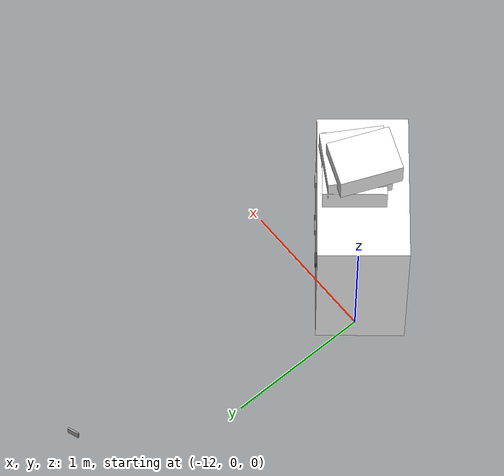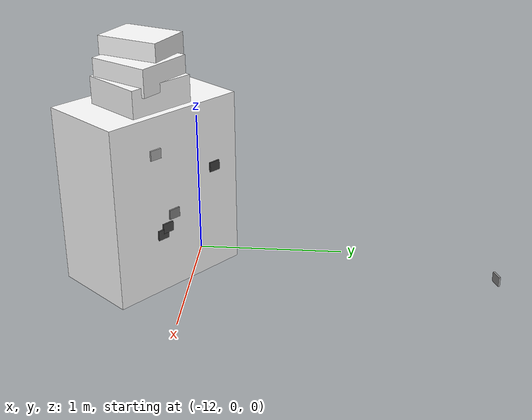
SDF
<sdf version="1.9">
 <world name="warehouse_irregular">
  <model name="panel_18_6_1">
   <static>true</static>
   <pose>-11.474506698169376 2.0002537901615995 0.13221671595427414 0 0 0.3568448051382027</pose>
   <link name="body">
    <visual name="surface">
     <geometry><box><size>0.08 0.012 0.065</size></box></geometry>
     <material>
      <ambient>0.6181526915644285 0.6181526915644285 0.6181526915644285 1</ambient>
      <diffuse>0.6181526915644285 0.6181526915644285 0.6181526915644285 1</diffuse>
     </material>
    </visual>
   </link>
  </model>
  <model name="cabinet_20">
   <static>true</static>
   <pose>-11.712233484824505 -0.2793267875629988 0.6052531006118012 0 0 -0.6949268432299933</pose>
   <link name="body">
    <visual name="surface">
     <geometry><box><size>1 0.6 1.2105062012236023</size></box></geometry>
     <material>
      <ambient>1 1 1 1</ambient>
      <diffuse>1 1 1 1</diffuse>
      <pbr>
       <metal>
        <albedo_map>model://feature_warehouse_materials/textures/storage_20.png</albedo_map>
        <roughness>.9</roughness>
        <metalness>0</metalness>
       </metal>
      </pbr>
     </material>
    </visual>
    <collision name="solid"><geometry><box><size>1 0.6 1.2105062012236023</size></box></geometry></collision>
   </link>
  </model>
  <model name="panel_20_0_1">
   <static>true</static>
   <pose>-11.750878609053675 0.14997326193969202 0.7467822247445873 0 0 -0.6949268432299933</pose>
   <link name="body">
    <visual name="surface">
     <geometry><box><size>0.08 0.012 0.065</size></box></geometry>
     <material>
      <ambient>0.250268938760258 0.250268938760258 0.250268938760258 1</ambient>
      <diffuse>0.250268938760258 0.250268938760258 0.250268938760258 1</diffuse>
     </material>
    </visual>
   </link>
  </model>
  <model name="panel_20_1_1">
   <static>true</static>
   <pose>-11.404296625320264 -0.1389558138581402 0.4090383457211423 0 0 -0.6949268432299933</pose>
   <link name="body">
    <visual name="surface">
     <geometry><box><size>0.08 0.012 0.065</size></box></geometry>
     <material>
      <ambient>0.2869058954303475 0.2869058954303475 0.2869058954303475 1</ambient>
      <diffuse>0.2869058954303475 0.2869058954303475 0.2869058954303475 1</diffuse>
     </material>
    </visual>
   </link>
  </model>
  <model name="panel_20_2_1">
   <static>true</static>
   <pose>-11.479254562367853 -0.07646691226673324 0.5254771433696706 0 0 -0.6949268432299933</pose>
   <link name="body">
    <visual name="surface">
     <geometry><box><size>0.08 0.012 0.065</size></box></geometry>
     <material>
      <ambient>0.5151647902656761 0.5151647902656761 0.5151647902656761 1</ambient>
      <diffuse>0.5151647902656761 0.5151647902656761 0.5151647902656761 1</diffuse>
     </material>
    </visual>
   </link>
  </model>
  <model name="panel_20_3_1">
   <static>true</static>
   <pose>-11.435144880068815 -0.11323907682967793 0.4448447473720447 0 0 -0.6949268432299933</pose>
   <link name="body">
    <visual name="surface">
     <geometry><box><size>0.08 0.012 0.065</size></box></geometry>
     <material>
      <ambient>0.28742045367606633 0.28742045367606633 0.28742045367606633 1</ambient>
      <diffuse>0.28742045367606633 0.28742045367606633 0.28742045367606633 1</diffuse>
     </material>
    </visual>
   </link>
  </model>
  <model name="panel_20_4_1">
   <static>true</static>
   <pose>-11.383359231984455 -0.15641033252920858 0.970644005284138 0 0 -0.6949268432299933</pose>
   <link name="body">
    <visual name="surface">
     <geometry><box><size>0.08 0.012 0.065</size></box></geometry>
     <material>
      <ambient>0.6899611390773993 0.6899611390773993 0.6899611390773993 1</ambient>
      <diffuse>0.6899611390773993 0.6899611390773993 0.6899611390773993 1</diffuse>
     </material>
    </visual>
   </link>
  </model>
  <model name="carton_20_0">
   <static>true</static>
   <pose>-11.620938959751742 -0.2793267875629988 1.3105062012236024 0 0 -0.6949268432299933</pose>
   <link name="body">
    <visual name="surface">
     <geometry><box><size>0.45 0.42 0.18</size></box></geometry>
     <material>
      <ambient>1 1 1 1</ambient>
      <diffuse>1 1 1 1</diffuse>
      <pbr>
       <metal>
        <albedo_map>model://feature_warehouse_materials/textures/storage_20.png</albedo_map>
        <roughness>.9</roughness>
        <metalness>0</metalness>
       </metal>
      </pbr>
     </material>
    </visual>
    <collision name="solid"><geometry><box><size>0.45 0.42 0.18</size></box></geometry></collision>
   </link>
  </model>
  <model name="carton_20_1">
   <static>true</static>
   <pose>-11.6285679209709 -0.2793267875629988 1.4305062012236025 0 0 -0.5449268432299933</pose>
   <link name="body">
    <visual name="surface">
     <geometry><box><size>0.38 0.42 0.18</size></box></geometry>
     <material>
      <ambient>1 1 1 1</ambient>
      <diffuse>1 1 1 1</diffuse>
      <pbr>
       <metal>
        <albedo_map>model://feature_warehouse_materials/textures/storage_20.png</albedo_map>
        <roughness>.9</roughness>
        <metalness>0</metalness>
       </metal>
      </pbr>
     </material>
    </visual>
    <collision name="solid"><geometry><box><size>0.38 0.42 0.18</size></box></geometry></collision>
   </link>
  </model>
  <model name="carton_20_2">
   <static>true</static>
   <pose>-11.713118615753546 -0.2793267875629988 1.5505062012236024 0 0 -0.39492684322999333</pose>
   <link name="body">
    <visual name="surface">
     <geometry><box><size>0.31 0.42 0.18</size></box></geometry>
     <material>
      <ambient>1 1 1 1</ambient>
      <diffuse>1 1 1 1</diffuse>
      <pbr>
       <metal>
        <albedo_map>model://feature_warehouse_materials/textures/storage_20.png</albedo_map>
        <roughness>.9</roughness>
        <metalness>0</metalness>
       </metal>
      </pbr>
     </material>
    </visual>
    <collision name="solid"><geometry><box><size>0.31 0.42 0.18</size></box></geometry></collision>
   </link>
  </model>
 </world>
</sdf>
